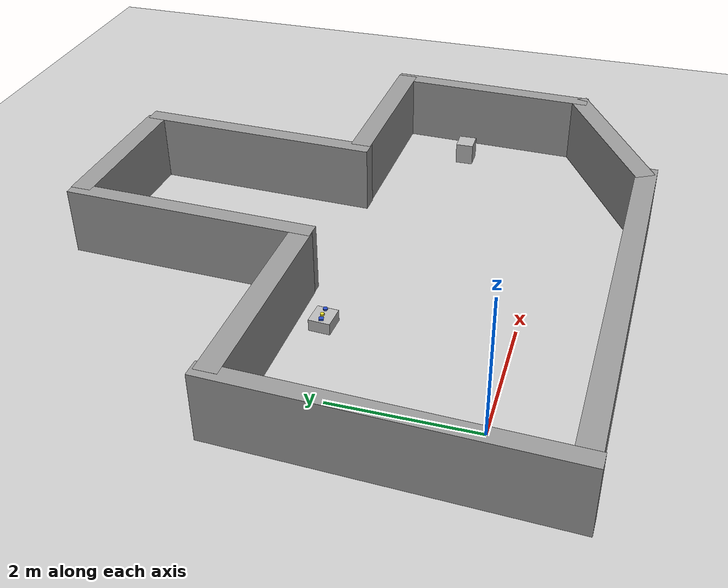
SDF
<sdf version="1.6">
 <world name="default">
  <light name="sun" type="directional">
   <pose>0 0 10 0 -0 0</pose>
   <diffuse>0.8 0.8 0.8 1</diffuse>
   <specular>0.2 0.2 0.2 1</specular>
   <attenuation>
    <range>1000</range>
    <constant>0.9</constant>
    <linear>0.01</linear>
    <quadratic>0.001</quadratic>
   </attenuation>
   <direction>-0.5 0.1 -0.9</direction>
  </light>
  <gravity>0 0 -9.8</gravity>
  <magnetic_field>6e-06 2.3e-05 -4.2e-05</magnetic_field>
  <atmosphere type="adiabatic"/>
  <physics name="default_physics" default="0" type="ode">
   <max_step_size>0.001</max_step_size>
   <real_time_factor>1</real_time_factor>
   <real_time_update_rate>1000</real_time_update_rate>
  </physics>
  <scene><ambient>0.4 0.4 0.4 1</ambient><background>0.7 0.7 0.7 1</background><shadows>1</shadows></scene>
  <spherical_coordinates>
   <surface_model>EARTH_WGS84</surface_model>
   <latitude_deg>0</latitude_deg>
   <longitude_deg>0</longitude_deg>
   <elevation>0</elevation>
   <heading_deg>0</heading_deg>
  </spherical_coordinates>
  <model name="unit_box_1_clone_0">
   <static>1</static>
   <pose>1.34863 2.49281 0.173493 2e-06 2e-06 0.253271</pose>
   <link name="link">
    <inertial><mass>1</mass></inertial>
    <collision name="collision">
     <geometry><box><size>0.0603281 0.063348 0.0302909</size></box></geometry>
    </collision>
    <visual name="visual">
     <geometry><box><size>0.0603281 0.063348 0.0302909</size></box></geometry>
     <material>
      <script><name>Gazebo/Blue</name><uri>file://media/materials/scripts/gazebo.material</uri></script>
     </material>
    </visual>
   </link>
  </model>
  <model name="unit_cylinder_clone">
   <static>1</static>
   <pose>1.565 2.50687 0.174397 -1e-06 -1e-06 -0.148</pose>
   <link name="link">
    <inertial><mass>1</mass></inertial>
    <collision name="collision">
     <geometry><cylinder><radius>0.0311369</radius><length>0.0255102</length></cylinder></geometry>
    </collision>
    <visual name="visual">
     <geometry><cylinder><radius>0.0311369</radius><length>0.0255102</length></cylinder></geometry>
     <material>
      <script><name>Gazebo/Blue</name><uri>file://media/materials/scripts/gazebo.material</uri></script>
     </material>
    </visual>
   </link>
  </model>
  <model name="unit_cylinder_clone_clone">
   <static>1</static>
   <pose>1.43556 2.50841 0.177784 3.14159 -2e-06 -1.80617</pose>
   <link name="link">
    <inertial><mass>1</mass></inertial>
    <collision name="collision">
     <geometry><cylinder><radius>0.028481</radius><length>0.0316786</length></cylinder></geometry>
    </collision>
    <visual name="visual">
     <geometry><cylinder><radius>0.028481</radius><length>0.0316786</length></cylinder></geometry>
     <material>
      <script><name>Gazebo/Yellow</name><uri>file://media/materials/scripts/gazebo.material</uri></script>
     </material>
    </visual>
   </link>
  </model>
  <model name="unit_box_1_clone_clone">
   <pose>3.43758 6.38057 0.5 6e-06 5e-06 -0.020166</pose>
   <link name="link">
    <inertial>
     <mass>0.1</mass>
     <inertia>
      <ixx>0.166667</ixx>
      <ixy>0</ixy>
      <ixz>0</ixz>
      <iyy>0.166667</iyy>
      <iyz>0</iyz>
      <izz>0.166667</izz>
     </inertia>
    </inertial>
    <collision name="collision"><geometry><box><size>0.0148086 0.01 1</size></box></geometry></collision>
    <visual name="visual">
     <geometry><box><size>2.35661 0.304897 1</size></box></geometry>
     <material>
      <script><name>Gazebo/Grey</name><uri>file://media/materials/scripts/gazebo.material</uri></script>
     </material>
    </visual>
   </link>
  </model>
  <model name="unit_box_clone">
   <pose>3.08137 5.24148 0.18857 0 -1e-05 0.012752</pose>
   <link name="link">
    <inertial>
     <mass>1</mass>
     <inertia>
      <ixx>0.166667</ixx>
      <ixy>0</ixy>
      <ixz>0</ixz>
      <iyy>0.166667</iyy>
      <iyz>0</iyz>
      <izz>0.166667</izz>
     </inertia>
    </inertial>
    <collision name="collision">
     <geometry><box><size>0.061297 0.054133 0.377159</size></box></geometry>
    </collision>
    <visual name="visual">
     <geometry><box><size>0.306485 0.270666 0.330014</size></box></geometry>
     <material>
      <script>
       <uri>model://tijolos/materials/scripts</uri>
       <uri>model://tijolos/materials/textures</uri>
       <name>Tijolos/Diffuse</name>
      </script>
     </material>
    </visual>
   </link>
  </model>
  <model name="unit_box_2_clone_clone_clone_clone_3_clone">
   <pose>4.60075 4.63096 0.5 3e-06 2e-06 -0.035852</pose>
   <link name="link">
    <inertial>
     <mass>1</mass>
     <inertia>
      <ixx>0.166667</ixx>
      <ixy>0</ixy>
      <ixz>0</ixz>
      <iyy>0.166667</iyy>
      <iyz>0</iyz>
      <izz>0.166667</izz>
     </inertia>
    </inertial>
    <collision name="collision"><geometry><box><size>0.01 0.01 1</size></box></geometry></collision>
    <visual name="visual">
     <geometry><box><size>0.246526 3.69295 1</size></box></geometry>
     <material>
      <script><name>Gazebo/Grey</name><uri>file://media/materials/scripts/gazebo.material</uri></script>
     </material>
    </visual>
   </link>
  </model>
  <model name="my_ground_plane">
   <static>1</static>
   <link name="link">
    <visual name="visual">
     <cast_shadows>0</cast_shadows>
     <geometry><plane><normal>0 0 1</normal><size>100 100</size></plane></geometry>
     <material>
      <script>
       <uri>model://my_ground_plane/materials/scripts</uri>
       <uri>model://my_ground_plane/materials/textures</uri>
       <name>MyGroundPlane/Image</name>
      </script>
     </material>
    </visual>
    <collision name="base">
     <geometry><plane><normal>0 0 1</normal><size>100 100</size></plane></geometry>
     <surface><friction><ode><mu>100</mu><mu2>50</mu2></ode></friction></surface>
    </collision>
   </link>
   <pose>-2.16772 3.22069 0 0 -0 0</pose>
  </model>
  <model name="unit_box_2_clone_clone_clone_clone_3_clone_clone">
   <pose>2.18821 4.69741 0.5 -4e-06 9e-06 -0.035773</pose>
   <link name="link">
    <inertial>
     <mass>1</mass>
     <inertia>
      <ixx>0.166667</ixx>
      <ixy>0</ixy>
      <ixz>0</ixz>
      <iyy>0.166667</iyy>
      <iyz>0</iyz>
      <izz>0.166667</izz>
     </inertia>
    </inertial>
    <collision name="collision"><geometry><box><size>0.01 0.01 1</size></box></geometry></collision>
    <visual name="visual">
     <geometry><box><size>0.246526 3.69295 1</size></box></geometry>
     <material>
      <script><name>Gazebo/Grey</name><uri>file://media/materials/scripts/gazebo.material</uri></script>
     </material>
    </visual>
   </link>
  </model>
  <model name="unit_box_1_clone_clone_clone">
   <pose>0.591555 3.02881 0.5 -3e-06 -2e-06 -0.020142</pose>
   <link name="link">
    <inertial>
     <mass>0.1</mass>
     <inertia>
      <ixx>0.166667</ixx>
      <ixy>0</ixy>
      <ixz>0</ixz>
      <iyy>0.166667</iyy>
      <iyz>0</iyz>
      <izz>0.166667</izz>
     </inertia>
    </inertial>
    <collision name="collision"><geometry><box><size>0.013591 0.01 1</size></box></geometry></collision>
    <visual name="visual">
     <geometry><box><size>3.00502 0.304897 1</size></box></geometry>
     <material>
      <script><name>Gazebo/Grey</name><uri>file://media/materials/scripts/gazebo.material</uri></script>
     </material>
    </visual>
   </link>
  </model>
  <model name="unit_box_clone_clone">
   <pose>6.35627 1.65031 0.18858 4e-06 1.7e-05 0.012848</pose>
   <link name="link">
    <inertial>
     <mass>1</mass>
     <inertia>
      <ixx>0.166667</ixx>
      <ixy>0</ixy>
      <ixz>0</ixz>
      <iyy>0.166667</iyy>
      <iyz>0</iyz>
      <izz>0.166667</izz>
     </inertia>
    </inertial>
    <collision name="collision">
     <geometry><box><size>0.061297 0.054133 0.377159</size></box></geometry>
    </collision>
    <visual name="visual">
     <geometry><box><size>0.306485 0.270666 0.330014</size></box></geometry>
     <material>
      <script>
       <uri>model://tijolos/materials/scripts</uri>
       <uri>model://tijolos/materials/textures</uri>
       <name>Tijolos/Diffuse</name>
      </script>
     </material>
    </visual>
   </link>
  </model>
  <model name="unit_box_1_clone_clone_clone_0">
   <pose>5.90856 2.92 0.5 3e-06 2e-06 -0.020119</pose>
   <link name="link">
    <inertial>
     <mass>0.1</mass>
     <inertia>
      <ixx>0.166667</ixx>
      <ixy>0</ixy>
      <ixz>0</ixz>
      <iyy>0.166667</iyy>
      <iyz>0</iyz>
      <izz>0.166667</izz>
     </inertia>
    </inertial>
    <collision name="collision"><geometry><box><size>0.01 0.01 1</size></box></geometry></collision>
    <visual name="visual">
     <geometry><box><size>2.6157 0.304897 1</size></box></geometry>
     <material>
      <script><name>Gazebo/Grey</name><uri>file://media/materials/scripts/gazebo.material</uri></script>
     </material>
    </visual>
   </link>
  </model>
  <model name="unit_box_2_clone_clone_clone_clone_3_clone_clone_0">
   <pose>7.10224 1.41637 0.49999 -6e-06 1.4e-05 -0.036131</pose>
   <link name="link">
    <inertial>
     <mass>1</mass>
     <inertia>
      <ixx>0.166667</ixx>
      <ixy>0</ixy>
      <ixz>0</ixz>
      <iyy>0.166667</iyy>
      <iyz>0</iyz>
      <izz>0.166667</izz>
     </inertia>
    </inertial>
    <collision name="collision"><geometry><box><size>0.01 0.00577309 1</size></box></geometry></collision>
    <visual name="visual">
     <geometry><box><size>0.246526 3.24534 1</size></box></geometry>
     <material>
      <script><name>Gazebo/Grey</name><uri>file://media/materials/scripts/gazebo.material</uri></script>
     </material>
    </visual>
   </link>
  </model>
  <model name="unit_box_1_clone_clone_clone_1">
   <pose>5.981 -0.677379 0.5 -9e-06 2e-06 0.511369</pose>
   <link name="link">
    <inertial>
     <mass>0.1</mass>
     <inertia>
      <ixx>0.166667</ixx>
      <ixy>0</ixy>
      <ixz>0</ixz>
      <iyy>0.166667</iyy>
      <iyz>0</iyz>
      <izz>0.166667</izz>
     </inertia>
    </inertial>
    <collision name="collision"><geometry><box><size>0.01 0.01 1</size></box></geometry></collision>
    <visual name="visual">
     <geometry><box><size>2.6157 0.304897 1</size></box></geometry>
     <material>
      <script><name>Gazebo/Grey</name><uri>file://media/materials/scripts/gazebo.material</uri></script>
     </material>
    </visual>
   </link>
  </model>
  <model name="unit_box_1_clone_clone_clone_2">
   <pose>1.96474 -1.26326 0.5 -6e-06 3e-06 -0.020163</pose>
   <link name="link">
    <inertial>
     <mass>0.1</mass>
     <inertia>
      <ixx>0.166667</ixx>
      <ixy>0</ixy>
      <ixz>0</ixz>
      <iyy>0.166667</iyy>
      <iyz>0</iyz>
      <izz>0.166667</izz>
     </inertia>
    </inertial>
    <collision name="collision"><geometry><box><size>0.25376 0.01 1</size></box></geometry></collision>
    <visual name="visual">
     <geometry><box><size>6.23658 0.304897 1</size></box></geometry>
     <material>
      <script><name>Gazebo/Grey</name><uri>file://media/materials/scripts/gazebo.material</uri></script>
     </material>
    </visual>
   </link>
  </model>
  <model name="unit_box_clone_clone_0">
   <pose>1.4467 2.49613 0.027066 -1.5708 -1e-06 1.50793</pose>
   <link name="link">
    <inertial>
     <mass>1</mass>
     <inertia>
      <ixx>0.166667</ixx>
      <ixy>0</ixy>
      <ixz>0</ixz>
      <iyy>0.166667</iyy>
      <iyz>0</iyz>
      <izz>0.166667</izz>
     </inertia>
    </inertial>
    <collision name="collision">
     <geometry><box><size>0.061297 0.054133 0.377159</size></box></geometry>
    </collision>
    <visual name="visual">
     <geometry><box><size>0.306485 0.270666 0.330014</size></box></geometry>
     <material>
      <script>
       <uri>model://tijolos/materials/scripts</uri>
       <uri>model://tijolos/materials/textures</uri>
       <name>Tijolos/Diffuse</name>
      </script>
     </material>
    </visual>
   </link>
  </model>
  <model name="unit_box_2_clone_clone_clone_clone_3_clone_clone_0_clone">
   <pose>-0.972766 0.933795 0.5 -1e-05 -4e-06 -0.035538</pose>
   <link name="link">
    <inertial>
     <mass>1</mass>
     <inertia>
      <ixx>0.166667</ixx>
      <ixy>0</ixy>
      <ixz>0</ixz>
      <iyy>0.166667</iyy>
      <iyz>0</iyz>
      <izz>0.166667</izz>
     </inertia>
    </inertial>
    <collision name="collision"><geometry><box><size>0.01 0.0175845 1</size></box></geometry></collision>
    <visual name="visual">
     <geometry><box><size>0.246526 4.62187 1</size></box></geometry>
     <material>
      <script><name>Gazebo/Grey</name><uri>file://media/materials/scripts/gazebo.material</uri></script>
     </material>
    </visual>
   </link>
  </model>
 </world>
</sdf>
